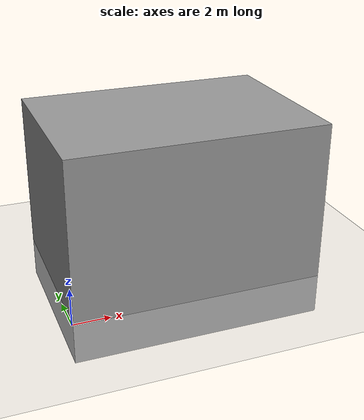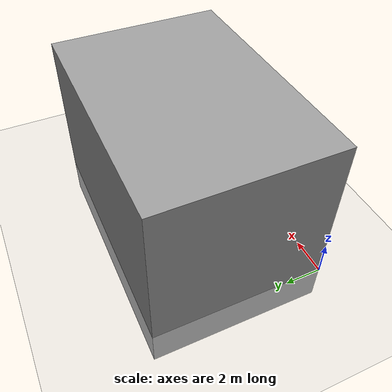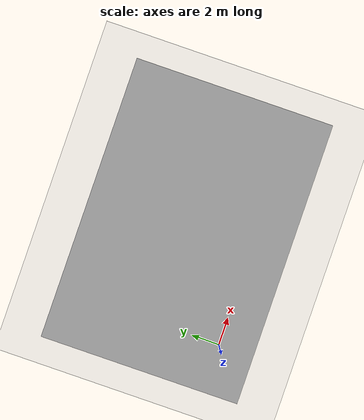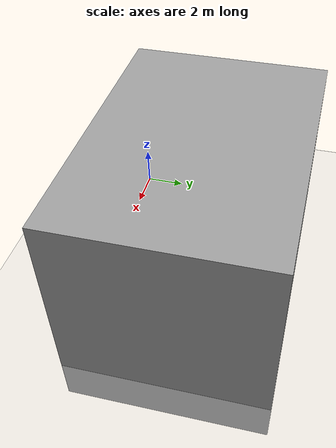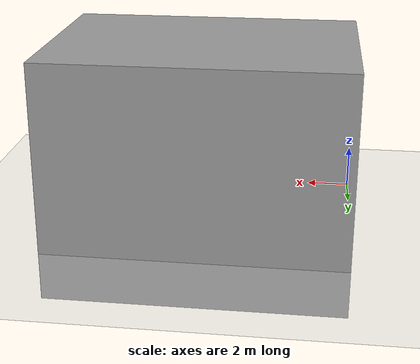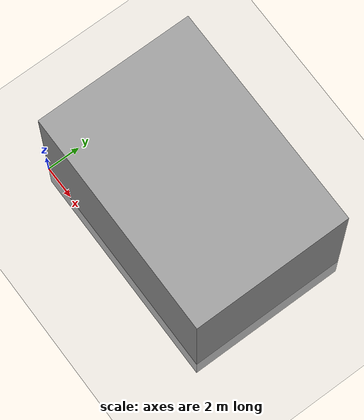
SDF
<sdf version="1.7">
 <world name="rmul2025_world">
  <model name="ground_plane">
   <static>1</static>
   <link name="link">
    <collision name="collision">
     <geometry><plane><normal>0 0 1</normal><size>100 100</size></plane></geometry>
     <surface>
      <contact><collide_bitmask>65535</collide_bitmask></contact>
      <friction><ode><mu>100</mu><mu2>50</mu2></ode></friction>
     </surface>
    </collision>
    <visual name="visual">
     <cast_shadows>0</cast_shadows>
     <geometry><plane><normal>0 0 1</normal><size>100 100</size></plane></geometry>
     <material>
      <script><uri>file://media/materials/scripts/gazebo.material</uri><name>Gazebo/Grey</name></script>
     </material>
    </visual>
   </link>
  </model>
  <gravity>0 0 -9.8</gravity>
  <magnetic_field>6e-06 2.3e-05 -4.2e-05</magnetic_field>
  <atmosphere type="adiabatic"/>
  <physics type="ode">
   <max_step_size>0.001</max_step_size>
   <real_time_factor>1</real_time_factor>
   <real_time_update_rate>1000</real_time_update_rate>
  </physics>
  <scene><ambient>0.4 0.4 0.4 1</ambient><background>0.7 0.7 0.7 1</background><shadows>1</shadows></scene>
  <audio><device>default</device></audio>
  <spherical_coordinates>
   <surface_model>EARTH_WGS84</surface_model>
   <latitude_deg>0</latitude_deg>
   <longitude_deg>0</longitude_deg>
   <elevation>0</elevation>
   <heading_deg>0</heading_deg>
  </spherical_coordinates>
  <light name="user_directional_light_0" type="directional">
   <pose>6.65722 3.73408 1 0 -0 0</pose>
   <diffuse>0.5 0.5 0.5 1</diffuse>
   <specular>0.1 0.1 0.1 1</specular>
   <direction>0.1 0.1 -0.9</direction>
   <attenuation>
    <range>20</range>
    <constant>0.5</constant>
    <linear>0.01</linear>
    <quadratic>0.001</quadratic>
   </attenuation>
   <spot><inner_angle>0</inner_angle><outer_angle>0</outer_angle><falloff>0</falloff></spot>
  </light>
  <light name="user_spot_light_0" type="spot">
   <pose>6.1802 4.07213 1 0 -0 0</pose>
   <diffuse>0.5 0.5 0.5 1</diffuse>
   <specular>0.1 0.1 0.1 1</specular>
   <direction>0 0 -1</direction>
   <attenuation>
    <range>20</range>
    <constant>0.5</constant>
    <linear>0.01</linear>
    <quadratic>0.001</quadratic>
   </attenuation>
   <cast_shadows>0</cast_shadows>
   <spot><inner_angle>0.6</inner_angle><outer_angle>1</outer_angle><falloff>1</falloff></spot>
  </light>
  <light name="user_spot_light_1" type="spot">
   <pose>1.22877 1.40393 1 0 -0 0</pose>
   <diffuse>0.5 0.5 0.5 1</diffuse>
   <specular>0.1 0.1 0.1 1</specular>
   <direction>0 0 -1</direction>
   <attenuation>
    <range>20</range>
    <constant>0.5</constant>
    <linear>0.01</linear>
    <quadratic>0.001</quadratic>
   </attenuation>
   <cast_shadows>0</cast_shadows>
   <spot><inner_angle>0.6</inner_angle><outer_angle>1</outer_angle><falloff>1</falloff></spot>
  </light>
  <light name="user_spot_light_2" type="spot">
   <pose>10.9658 7.03614 1 0 -0 0</pose>
   <diffuse>0.5 0.5 0.5 1</diffuse>
   <specular>0.1 0.1 0.1 1</specular>
   <direction>0 0 -1</direction>
   <attenuation>
    <range>20</range>
    <constant>0.5</constant>
    <linear>0.01</linear>
    <quadratic>0.001</quadratic>
   </attenuation>
   <cast_shadows>0</cast_shadows>
   <spot><inner_angle>0.6</inner_angle><outer_angle>1</outer_angle><falloff>1</falloff></spot>
  </light>
  <light name="user_directional_light_0_clone" type="directional">
   <pose>10.9894 4.61835 8 0 -0 0</pose>
   <diffuse>0.494118 0.494118 0.494118 1</diffuse>
   <specular>0.0901961 0.0901961 0.0901961 1</specular>
   <direction>0.059877 0.059877 -0.996408</direction>
   <attenuation>
    <range>20</range>
    <constant>0.5</constant>
    <linear>0.01</linear>
    <quadratic>0.001</quadratic>
   </attenuation>
   <spot><inner_angle>0</inner_angle><outer_angle>0</outer_angle><falloff>0</falloff></spot>
  </light>
  <model name="RMUL2025_world">
   <link name="link_0">
    <inertial>
     <mass>1</mass>
     <inertia>
      <ixx>0.166667</ixx>
      <ixy>0</ixy>
      <ixz>0</ixz>
      <iyy>0.166667</iyy>
      <iyz>0</iyz>
      <izz>0.166667</izz>
     </inertia>
    </inertial>
    <pose>0 0 0 -1.57 0 0</pose>
    <visual name="visual">
     <geometry><mesh><uri>model://RMUL2025_world/meshes/RMUL_2025.STL</uri><scale>1 1 1</scale></mesh></geometry>
     <material>
      <lighting>1</lighting>
      <script><uri>file://media/materials/scripts/gazebo.material</uri><name>Gazebo/Grey</name></script>
      <shader type="pixel"><normal_map>__default__</normal_map></shader>
      <ambient>0.3 0.3 0.3 1</ambient>
      <diffuse>0.7 0.7 0.7 1</diffuse>
      <specular>0.01 0.01 0.01 1</specular>
      <emissive>0 0 0 1</emissive>
     </material>
    </visual>
    <collision name="collision">
     <geometry><mesh><uri>model://RMUL2025_world/meshes/RMUL_2025.STL</uri><scale>1 1 1</scale></mesh></geometry>
     <surface>
      <friction>
       <ode><mu>1</mu><mu2>1</mu2><fdir1>0 0 0</fdir1><slip1>0</slip1><slip2>0</slip2></ode>
       <torsional>
        <coefficient>1</coefficient>
        <patch_radius>0</patch_radius>
        <surface_radius>0</surface_radius>
        <use_patch_radius>1</use_patch_radius>
        <ode><slip>0</slip></ode>
       </torsional>
      </friction>
      <bounce><restitution_coefficient>0</restitution_coefficient><threshold>1e+06</threshold></bounce>
      <contact>
       <collide_without_contact>0</collide_without_contact>
       <collide_without_contact_bitmask>1</collide_without_contact_bitmask>
       <collide_bitmask>1</collide_bitmask>
       <ode>
        <soft_cfm>0</soft_cfm>
        <soft_erp>0.2</soft_erp>
        <kp>1e+13</kp>
        <kd>1</kd>
        <max_vel>0.01</max_vel>
        <min_depth>0</min_depth>
       </ode>
       <bullet>
        <split_impulse>1</split_impulse>
        <split_impulse_penetration_threshold>-0.01</split_impulse_penetration_threshold>
        <soft_cfm>0</soft_cfm>
        <soft_erp>0.2</soft_erp>
        <kp>1e+13</kp>
        <kd>1</kd>
       </bullet>
      </contact>
     </surface>
    </collision>
   </link>
   <static>1</static>
   <pose>6.8 4.8 0.3 0 -0 0</pose>
  </model>
 </world>
</sdf>
